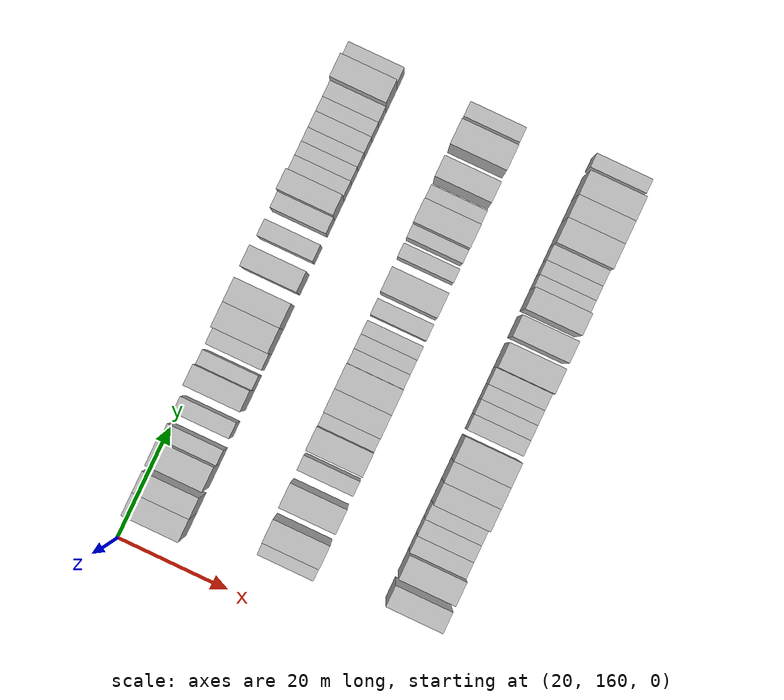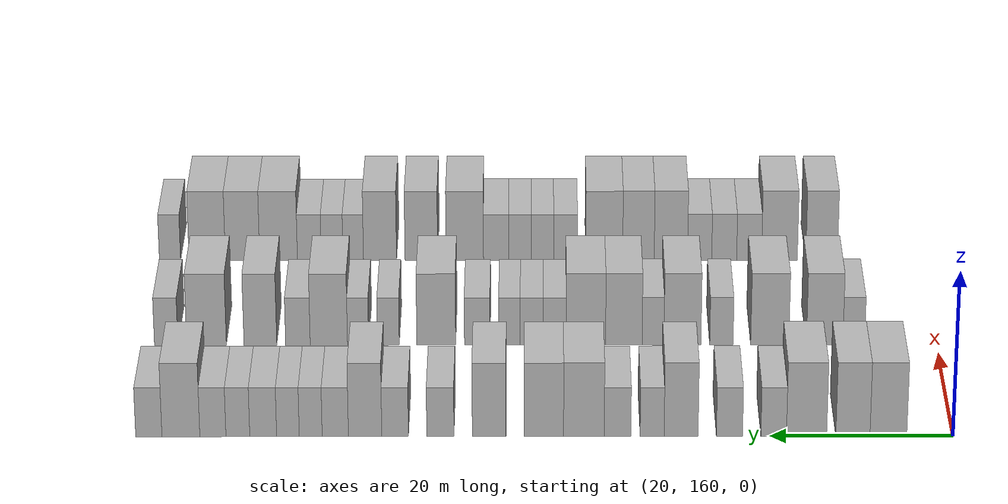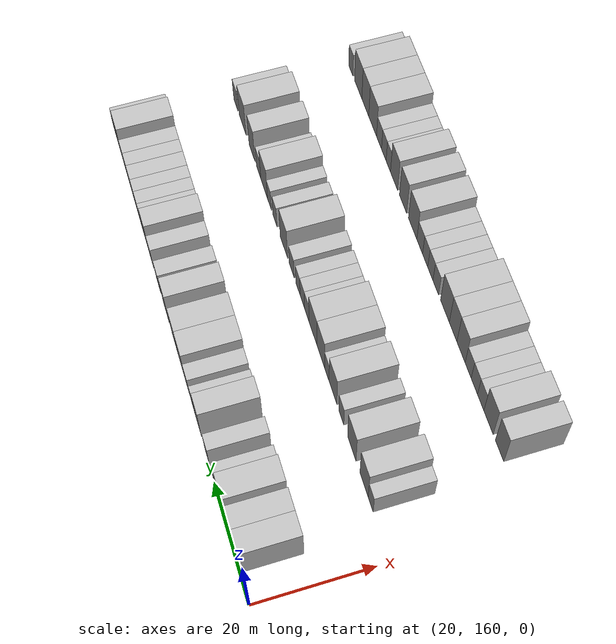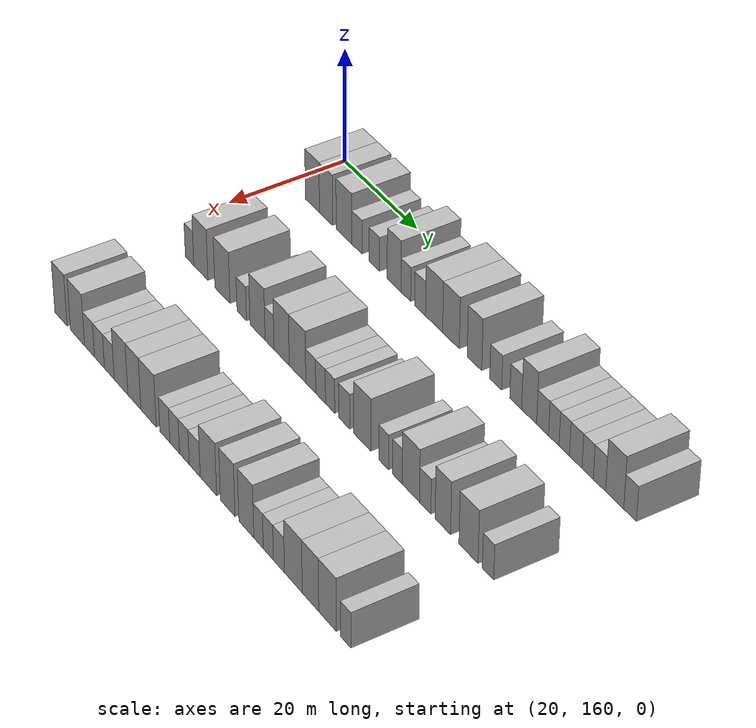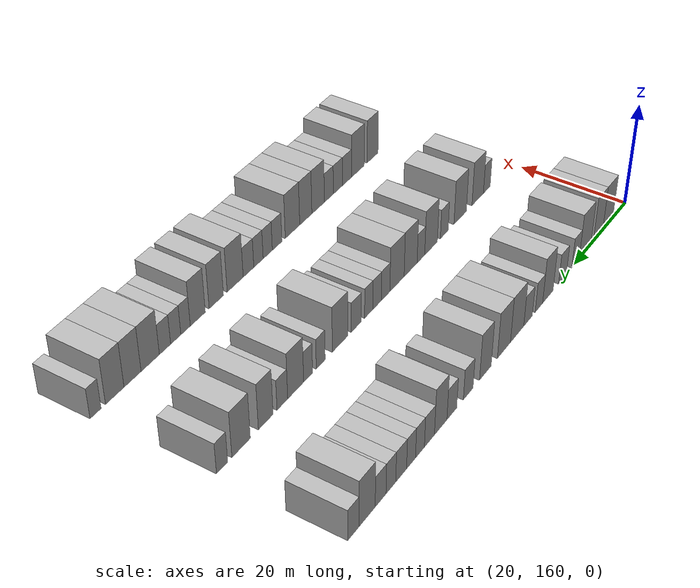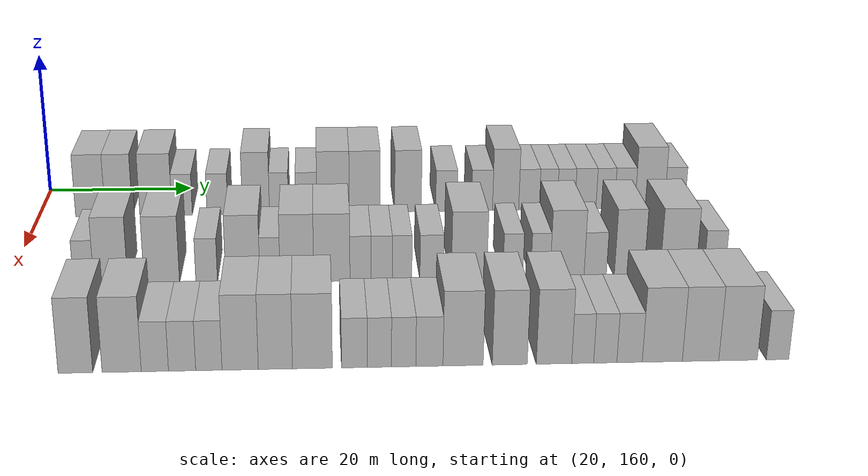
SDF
<sdf version="1.6">
 <world name="default">
  <model name="building_107">
   <static>1</static>
   <pose>25.0000 167.0758 0 0.000000 0.000000 0.000000</pose>
   <link name="link">
    <pose>0 0 4.50 0 0 0</pose>
    <collision name="collision"><geometry><box><size>10.0000 4.0191 9.0000</size></box></geometry></collision>
    <visual name="visual">
     <cast_shadows>0</cast_shadows>
     <geometry><box><size>10.0000 4.0191 9.0000</size></box></geometry>
     <material>
      <script>
       <uri>model://HANNAS_wall/materials/scripts</uri>
       <uri>model://HANNAS_wall/materials/textures</uri>
       <name>vrc/HANNAS_wall</name>
      </script>
     </material>
    </visual>
   </link>
  </model>
  <model name="building_108">
   <static>1</static>
   <pose>25.0000 170.9460 0 0.000000 0.000000 0.000000</pose>
   <link name="link">
    <pose>0 0 4.50 0 0 0</pose>
    <collision name="collision"><geometry><box><size>10.0000 3.7213 9.0000</size></box></geometry></collision>
    <visual name="visual">
     <cast_shadows>0</cast_shadows>
     <geometry><box><size>10.0000 3.7213 9.0000</size></box></geometry>
     <material>
      <script>
       <uri>model://HANNAS_wall/materials/scripts</uri>
       <uri>model://HANNAS_wall/materials/textures</uri>
       <name>vrc/HANNAS_wall</name>
      </script>
     </material>
    </visual>
   </link>
  </model>
  <model name="building_109">
   <static>1</static>
   <pose>25.0000 176.0025 0 0.000000 0.000000 0.000000</pose>
   <link name="link">
    <pose>0 0 4.50 0 0 0</pose>
    <collision name="collision"><geometry><box><size>10.0000 4.3917 9.0000</size></box></geometry></collision>
    <visual name="visual">
     <cast_shadows>0</cast_shadows>
     <geometry><box><size>10.0000 4.3917 9.0000</size></box></geometry>
     <material>
      <script>
       <uri>model://HANNAS_wall/materials/scripts</uri>
       <uri>model://HANNAS_wall/materials/textures</uri>
       <name>vrc/HANNAS_wall</name>
      </script>
     </material>
    </visual>
   </link>
  </model>
  <model name="building_110">
   <static>1</static>
   <pose>25.0000 179.5913 0 0.000000 0.000000 0.000000</pose>
   <link name="link">
    <pose>0 0 3.00 0 0 0</pose>
    <collision name="collision"><geometry><box><size>10.0000 2.7858 6.0000</size></box></geometry></collision>
    <visual name="visual">
     <cast_shadows>0</cast_shadows>
     <geometry><box><size>10.0000 2.7858 6.0000</size></box></geometry>
     <material>
      <script>
       <uri>model://HANNAS_wall/materials/scripts</uri>
       <uri>model://HANNAS_wall/materials/textures</uri>
       <name>vrc/HANNAS_wall</name>
      </script>
     </material>
    </visual>
   </link>
  </model>
  <model name="building_111">
   <static>1</static>
   <pose>25.0000 184.4100 0 0.000000 0.000000 0.000000</pose>
   <link name="link">
    <pose>0 0 3.00 0 0 0</pose>
    <collision name="collision"><geometry><box><size>10.0000 2.8516 6.0000</size></box></geometry></collision>
    <visual name="visual">
     <cast_shadows>0</cast_shadows>
     <geometry><box><size>10.0000 2.8516 6.0000</size></box></geometry>
     <material>
      <script>
       <uri>model://HANNAS_wall/materials/scripts</uri>
       <uri>model://HANNAS_wall/materials/textures</uri>
       <name>vrc/HANNAS_wall</name>
      </script>
     </material>
    </visual>
   </link>
  </model>
  <model name="building_112">
   <static>1</static>
   <pose>25.0000 189.6895 0 0.000000 0.000000 0.000000</pose>
   <link name="link">
    <pose>0 0 4.50 0 0 0</pose>
    <collision name="collision"><geometry><box><size>10.0000 3.7074 9.0000</size></box></geometry></collision>
    <visual name="visual">
     <cast_shadows>0</cast_shadows>
     <geometry><box><size>10.0000 3.7074 9.0000</size></box></geometry>
     <material>
      <script>
       <uri>model://HANNAS_wall/materials/scripts</uri>
       <uri>model://HANNAS_wall/materials/textures</uri>
       <name>vrc/HANNAS_wall</name>
      </script>
     </material>
    </visual>
   </link>
  </model>
  <model name="building_113">
   <static>1</static>
   <pose>25.0000 192.8503 0 0.000000 0.000000 0.000000</pose>
   <link name="link">
    <pose>0 0 3.00 0 0 0</pose>
    <collision name="collision"><geometry><box><size>10.0000 2.6142 6.0000</size></box></geometry></collision>
    <visual name="visual">
     <cast_shadows>0</cast_shadows>
     <geometry><box><size>10.0000 2.6142 6.0000</size></box></geometry>
     <material>
      <script>
       <uri>model://HANNAS_wall/materials/scripts</uri>
       <uri>model://HANNAS_wall/materials/textures</uri>
       <name>vrc/HANNAS_wall</name>
      </script>
     </material>
    </visual>
   </link>
  </model>
  <model name="building_114">
   <static>1</static>
   <pose>25.0000 196.6138 0 0.000000 0.000000 0.000000</pose>
   <link name="link">
    <pose>0 0 3.00 0 0 0</pose>
    <collision name="collision"><geometry><box><size>10.0000 2.9129 6.0000</size></box></geometry></collision>
    <visual name="visual">
     <cast_shadows>0</cast_shadows>
     <geometry><box><size>10.0000 2.9129 6.0000</size></box></geometry>
     <material>
      <script>
       <uri>model://HANNAS_wall/materials/scripts</uri>
       <uri>model://HANNAS_wall/materials/textures</uri>
       <name>vrc/HANNAS_wall</name>
      </script>
     </material>
    </visual>
   </link>
  </model>
  <model name="building_115">
   <static>1</static>
   <pose>25.0000 200.2896 0 0.000000 0.000000 0.000000</pose>
   <link name="link">
    <pose>0 0 4.50 0 0 0</pose>
    <collision name="collision"><geometry><box><size>10.0000 4.4387 9.0000</size></box></geometry></collision>
    <visual name="visual">
     <cast_shadows>0</cast_shadows>
     <geometry><box><size>10.0000 4.4387 9.0000</size></box></geometry>
     <material>
      <script>
       <uri>model://HANNAS_wall/materials/scripts</uri>
       <uri>model://HANNAS_wall/materials/textures</uri>
       <name>vrc/HANNAS_wall</name>
      </script>
     </material>
    </visual>
   </link>
  </model>
  <model name="building_116">
   <static>1</static>
   <pose>25.0000 204.6484 0 0.000000 0.000000 0.000000</pose>
   <link name="link">
    <pose>0 0 4.50 0 0 0</pose>
    <collision name="collision"><geometry><box><size>10.0000 4.2787 9.0000</size></box></geometry></collision>
    <visual name="visual">
     <cast_shadows>0</cast_shadows>
     <geometry><box><size>10.0000 4.2787 9.0000</size></box></geometry>
     <material>
      <script>
       <uri>model://HANNAS_wall/materials/scripts</uri>
       <uri>model://HANNAS_wall/materials/textures</uri>
       <name>vrc/HANNAS_wall</name>
      </script>
     </material>
    </visual>
   </link>
  </model>
  <model name="building_117">
   <static>1</static>
   <pose>25.0000 210.6261 0 0.000000 0.000000 0.000000</pose>
   <link name="link">
    <pose>0 0 4.50 0 0 0</pose>
    <collision name="collision"><geometry><box><size>10.0000 3.6767 9.0000</size></box></geometry></collision>
    <visual name="visual">
     <cast_shadows>0</cast_shadows>
     <geometry><box><size>10.0000 3.6767 9.0000</size></box></geometry>
     <material>
      <script>
       <uri>model://HANNAS_wall/materials/scripts</uri>
       <uri>model://HANNAS_wall/materials/textures</uri>
       <name>vrc/HANNAS_wall</name>
      </script>
     </material>
    </visual>
   </link>
  </model>
  <model name="building_118">
   <static>1</static>
   <pose>25.0000 215.9495 0 0.000000 0.000000 0.000000</pose>
   <link name="link">
    <pose>0 0 3.00 0 0 0</pose>
    <collision name="collision"><geometry><box><size>10.0000 2.9702 6.0000</size></box></geometry></collision>
    <visual name="visual">
     <cast_shadows>0</cast_shadows>
     <geometry><box><size>10.0000 2.9702 6.0000</size></box></geometry>
     <material>
      <script>
       <uri>model://HANNAS_wall/materials/scripts</uri>
       <uri>model://HANNAS_wall/materials/textures</uri>
       <name>vrc/HANNAS_wall</name>
      </script>
     </material>
    </visual>
   </link>
  </model>
  <model name="building_119">
   <static>1</static>
   <pose>25.0000 220.8878 0 0.000000 0.000000 0.000000</pose>
   <link name="link">
    <pose>0 0 3.00 0 0 0</pose>
    <collision name="collision"><geometry><box><size>10.0000 2.9063 6.0000</size></box></geometry></collision>
    <visual name="visual">
     <cast_shadows>0</cast_shadows>
     <geometry><box><size>10.0000 2.9063 6.0000</size></box></geometry>
     <material>
      <script>
       <uri>model://HANNAS_wall/materials/scripts</uri>
       <uri>model://HANNAS_wall/materials/textures</uri>
       <name>vrc/HANNAS_wall</name>
      </script>
     </material>
    </visual>
   </link>
  </model>
  <model name="building_120">
   <static>1</static>
   <pose>25.0000 224.1613 0 0.000000 0.000000 0.000000</pose>
   <link name="link">
    <pose>0 0 4.50 0 0 0</pose>
    <collision name="collision"><geometry><box><size>10.0000 3.6408 9.0000</size></box></geometry></collision>
    <visual name="visual">
     <cast_shadows>0</cast_shadows>
     <geometry><box><size>10.0000 3.6408 9.0000</size></box></geometry>
     <material>
      <script>
       <uri>model://HANNAS_wall/materials/scripts</uri>
       <uri>model://HANNAS_wall/materials/textures</uri>
       <name>vrc/HANNAS_wall</name>
      </script>
     </material>
    </visual>
   </link>
  </model>
  <model name="building_121">
   <static>1</static>
   <pose>25.0000 227.4123 0 0.000000 0.000000 0.000000</pose>
   <link name="link">
    <pose>0 0 3.00 0 0 0</pose>
    <collision name="collision"><geometry><box><size>10.0000 2.8612 6.0000</size></box></geometry></collision>
    <visual name="visual">
     <cast_shadows>0</cast_shadows>
     <geometry><box><size>10.0000 2.8612 6.0000</size></box></geometry>
     <material>
      <script>
       <uri>model://HANNAS_wall/materials/scripts</uri>
       <uri>model://HANNAS_wall/materials/textures</uri>
       <name>vrc/HANNAS_wall</name>
      </script>
     </material>
    </visual>
   </link>
  </model>
  <model name="building_122">
   <static>1</static>
   <pose>25.0000 230.0926 0 0.000000 0.000000 0.000000</pose>
   <link name="link">
    <pose>0 0 3.00 0 0 0</pose>
    <collision name="collision"><geometry><box><size>10.0000 2.4994 6.0000</size></box></geometry></collision>
    <visual name="visual">
     <cast_shadows>0</cast_shadows>
     <geometry><box><size>10.0000 2.4994 6.0000</size></box></geometry>
     <material>
      <script>
       <uri>model://HANNAS_wall/materials/scripts</uri>
       <uri>model://HANNAS_wall/materials/textures</uri>
       <name>vrc/HANNAS_wall</name>
      </script>
     </material>
    </visual>
   </link>
  </model>
  <model name="building_123">
   <static>1</static>
   <pose>25.0000 232.5767 0 0.000000 0.000000 0.000000</pose>
   <link name="link">
    <pose>0 0 3.00 0 0 0</pose>
    <collision name="collision"><geometry><box><size>10.0000 2.4689 6.0000</size></box></geometry></collision>
    <visual name="visual">
     <cast_shadows>0</cast_shadows>
     <geometry><box><size>10.0000 2.4689 6.0000</size></box></geometry>
     <material>
      <script>
       <uri>model://HANNAS_wall/materials/scripts</uri>
       <uri>model://HANNAS_wall/materials/textures</uri>
       <name>vrc/HANNAS_wall</name>
      </script>
     </material>
    </visual>
   </link>
  </model>
  <model name="building_124">
   <static>1</static>
   <pose>25.0000 235.2777 0 0.000000 0.000000 0.000000</pose>
   <link name="link">
    <pose>0 0 3.00 0 0 0</pose>
    <collision name="collision"><geometry><box><size>10.0000 2.9331 6.0000</size></box></geometry></collision>
    <visual name="visual">
     <cast_shadows>0</cast_shadows>
     <geometry><box><size>10.0000 2.9331 6.0000</size></box></geometry>
     <material>
      <script>
       <uri>model://HANNAS_wall/materials/scripts</uri>
       <uri>model://HANNAS_wall/materials/textures</uri>
       <name>vrc/HANNAS_wall</name>
      </script>
     </material>
    </visual>
   </link>
  </model>
  <model name="building_125">
   <static>1</static>
   <pose>25.0000 238.0441 0 0.000000 0.000000 0.000000</pose>
   <link name="link">
    <pose>0 0 3.00 0 0 0</pose>
    <collision name="collision"><geometry><box><size>10.0000 2.5997 6.0000</size></box></geometry></collision>
    <visual name="visual">
     <cast_shadows>0</cast_shadows>
     <geometry><box><size>10.0000 2.5997 6.0000</size></box></geometry>
     <material>
      <script>
       <uri>model://HANNAS_wall/materials/scripts</uri>
       <uri>model://HANNAS_wall/materials/textures</uri>
       <name>vrc/HANNAS_wall</name>
      </script>
     </material>
    </visual>
   </link>
  </model>
  <model name="building_126">
   <static>1</static>
   <pose>25.0000 240.7661 0 0.000000 0.000000 0.000000</pose>
   <link name="link">
    <pose>0 0 3.00 0 0 0</pose>
    <collision name="collision"><geometry><box><size>10.0000 2.8443 6.0000</size></box></geometry></collision>
    <visual name="visual">
     <cast_shadows>0</cast_shadows>
     <geometry><box><size>10.0000 2.8443 6.0000</size></box></geometry>
     <material>
      <script>
       <uri>model://HANNAS_wall/materials/scripts</uri>
       <uri>model://HANNAS_wall/materials/textures</uri>
       <name>vrc/HANNAS_wall</name>
      </script>
     </material>
    </visual>
   </link>
  </model>
  <model name="building_127">
   <static>1</static>
   <pose>25.0000 244.2542 0 0.000000 0.000000 0.000000</pose>
   <link name="link">
    <pose>0 0 4.50 0 0 0</pose>
    <collision name="collision"><geometry><box><size>10.0000 4.1318 9.0000</size></box></geometry></collision>
    <visual name="visual">
     <cast_shadows>0</cast_shadows>
     <geometry><box><size>10.0000 4.1318 9.0000</size></box></geometry>
     <material>
      <script>
       <uri>model://HANNAS_wall/materials/scripts</uri>
       <uri>model://HANNAS_wall/materials/textures</uri>
       <name>vrc/HANNAS_wall</name>
      </script>
     </material>
    </visual>
   </link>
  </model>
  <model name="building_128">
   <static>1</static>
   <pose>25.0000 247.7503 0 0.000000 0.000000 0.000000</pose>
   <link name="link">
    <pose>0 0 3.00 0 0 0</pose>
    <collision name="collision"><geometry><box><size>10.0000 2.8604 6.0000</size></box></geometry></collision>
    <visual name="visual">
     <cast_shadows>0</cast_shadows>
     <geometry><box><size>10.0000 2.8604 6.0000</size></box></geometry>
     <material>
      <script>
       <uri>model://HANNAS_wall/materials/scripts</uri>
       <uri>model://HANNAS_wall/materials/textures</uri>
       <name>vrc/HANNAS_wall</name>
      </script>
     </material>
    </visual>
   </link>
  </model>
  <model name="building_236">
   <static>1</static>
   <pose>47.0000 169.4350 0 0.000000 0.000000 0.000000</pose>
   <link name="link">
    <pose>0 0 3.00 0 0 0</pose>
    <collision name="collision"><geometry><box><size>10.0000 2.4750 6.0000</size></box></geometry></collision>
    <visual name="visual">
     <cast_shadows>0</cast_shadows>
     <geometry><box><size>10.0000 2.4750 6.0000</size></box></geometry>
     <material>
      <script>
       <uri>model://HANNAS_wall/materials/scripts</uri>
       <uri>model://HANNAS_wall/materials/textures</uri>
       <name>vrc/HANNAS_wall</name>
      </script>
     </material>
    </visual>
   </link>
  </model>
  <model name="building_237">
   <static>1</static>
   <pose>47.0000 172.7394 0 0.000000 0.000000 0.000000</pose>
   <link name="link">
    <pose>0 0 4.50 0 0 0</pose>
    <collision name="collision"><geometry><box><size>10.0000 4.1339 9.0000</size></box></geometry></collision>
    <visual name="visual">
     <cast_shadows>0</cast_shadows>
     <geometry><box><size>10.0000 4.1339 9.0000</size></box></geometry>
     <material>
      <script>
       <uri>model://HANNAS_wall/materials/scripts</uri>
       <uri>model://HANNAS_wall/materials/textures</uri>
       <name>vrc/HANNAS_wall</name>
      </script>
     </material>
    </visual>
   </link>
  </model>
  <model name="building_238">
   <static>1</static>
   <pose>47.0000 178.9710 0 0.000000 0.000000 0.000000</pose>
   <link name="link">
    <pose>0 0 4.50 0 0 0</pose>
    <collision name="collision"><geometry><box><size>10.0000 4.3293 9.0000</size></box></geometry></collision>
    <visual name="visual">
     <cast_shadows>0</cast_shadows>
     <geometry><box><size>10.0000 4.3293 9.0000</size></box></geometry>
     <material>
      <script>
       <uri>model://HANNAS_wall/materials/scripts</uri>
       <uri>model://HANNAS_wall/materials/textures</uri>
       <name>vrc/HANNAS_wall</name>
      </script>
     </material>
    </visual>
   </link>
  </model>
  <model name="building_239">
   <static>1</static>
   <pose>47.0000 184.4597 0 0.000000 0.000000 0.000000</pose>
   <link name="link">
    <pose>0 0 3.00 0 0 0</pose>
    <collision name="collision"><geometry><box><size>10.0000 2.6481 6.0000</size></box></geometry></collision>
    <visual name="visual">
     <cast_shadows>0</cast_shadows>
     <geometry><box><size>10.0000 2.6481 6.0000</size></box></geometry>
     <material>
      <script>
       <uri>model://HANNAS_wall/materials/scripts</uri>
       <uri>model://HANNAS_wall/materials/textures</uri>
       <name>vrc/HANNAS_wall</name>
      </script>
     </material>
    </visual>
   </link>
  </model>
  <model name="building_240">
   <static>1</static>
   <pose>47.0000 188.8817 0 0.000000 0.000000 0.000000</pose>
   <link name="link">
    <pose>0 0 4.50 0 0 0</pose>
    <collision name="collision"><geometry><box><size>10.0000 4.1958 9.0000</size></box></geometry></collision>
    <visual name="visual">
     <cast_shadows>0</cast_shadows>
     <geometry><box><size>10.0000 4.1958 9.0000</size></box></geometry>
     <material>
      <script>
       <uri>model://HANNAS_wall/materials/scripts</uri>
       <uri>model://HANNAS_wall/materials/textures</uri>
       <name>vrc/HANNAS_wall</name>
      </script>
     </material>
    </visual>
   </link>
  </model>
  <model name="building_241">
   <static>1</static>
   <pose>47.0000 192.2202 0 0.000000 0.000000 0.000000</pose>
   <link name="link">
    <pose>0 0 3.00 0 0 0</pose>
    <collision name="collision"><geometry><box><size>10.0000 2.4813 6.0000</size></box></geometry></collision>
    <visual name="visual">
     <cast_shadows>0</cast_shadows>
     <geometry><box><size>10.0000 2.4813 6.0000</size></box></geometry>
     <material>
      <script>
       <uri>model://HANNAS_wall/materials/scripts</uri>
       <uri>model://HANNAS_wall/materials/textures</uri>
       <name>vrc/HANNAS_wall</name>
      </script>
     </material>
    </visual>
   </link>
  </model>
  <model name="building_242">
   <static>1</static>
   <pose>47.0000 195.5346 0 0.000000 0.000000 0.000000</pose>
   <link name="link">
    <pose>0 0 4.50 0 0 0</pose>
    <collision name="collision"><geometry><box><size>10.0000 4.1475 9.0000</size></box></geometry></collision>
    <visual name="visual">
     <cast_shadows>0</cast_shadows>
     <geometry><box><size>10.0000 4.1475 9.0000</size></box></geometry>
     <material>
      <script>
       <uri>model://HANNAS_wall/materials/scripts</uri>
       <uri>model://HANNAS_wall/materials/textures</uri>
       <name>vrc/HANNAS_wall</name>
      </script>
     </material>
    </visual>
   </link>
  </model>
  <model name="building_243">
   <static>1</static>
   <pose>47.0000 199.8402 0 0.000000 0.000000 0.000000</pose>
   <link name="link">
    <pose>0 0 4.50 0 0 0</pose>
    <collision name="collision"><geometry><box><size>10.0000 4.4636 9.0000</size></box></geometry></collision>
    <visual name="visual">
     <cast_shadows>0</cast_shadows>
     <geometry><box><size>10.0000 4.4636 9.0000</size></box></geometry>
     <material>
      <script>
       <uri>model://HANNAS_wall/materials/scripts</uri>
       <uri>model://HANNAS_wall/materials/textures</uri>
       <name>vrc/HANNAS_wall</name>
      </script>
     </material>
    </visual>
   </link>
  </model>
  <model name="building_244">
   <static>1</static>
   <pose>47.0000 203.3825 0 0.000000 0.000000 0.000000</pose>
   <link name="link">
    <pose>0 0 3.00 0 0 0</pose>
    <collision name="collision"><geometry><box><size>10.0000 2.6209 6.0000</size></box></geometry></collision>
    <visual name="visual">
     <cast_shadows>0</cast_shadows>
     <geometry><box><size>10.0000 2.6209 6.0000</size></box></geometry>
     <material>
      <script>
       <uri>model://HANNAS_wall/materials/scripts</uri>
       <uri>model://HANNAS_wall/materials/textures</uri>
       <name>vrc/HANNAS_wall</name>
      </script>
     </material>
    </visual>
   </link>
  </model>
  <model name="building_245">
   <static>1</static>
   <pose>47.0000 205.9916 0 0.000000 0.000000 0.000000</pose>
   <link name="link">
    <pose>0 0 3.00 0 0 0</pose>
    <collision name="collision"><geometry><box><size>10.0000 2.5974 6.0000</size></box></geometry></collision>
    <visual name="visual">
     <cast_shadows>0</cast_shadows>
     <geometry><box><size>10.0000 2.5974 6.0000</size></box></geometry>
     <material>
      <script>
       <uri>model://HANNAS_wall/materials/scripts</uri>
       <uri>model://HANNAS_wall/materials/textures</uri>
       <name>vrc/HANNAS_wall</name>
      </script>
     </material>
    </visual>
   </link>
  </model>
  <model name="building_246">
   <static>1</static>
   <pose>47.0000 208.5048 0 0.000000 0.000000 0.000000</pose>
   <link name="link">
    <pose>0 0 3.00 0 0 0</pose>
    <collision name="collision"><geometry><box><size>10.0000 2.4290 6.0000</size></box></geometry></collision>
    <visual name="visual">
     <cast_shadows>0</cast_shadows>
     <geometry><box><size>10.0000 2.4290 6.0000</size></box></geometry>
     <material>
      <script>
       <uri>model://HANNAS_wall/materials/scripts</uri>
       <uri>model://HANNAS_wall/materials/textures</uri>
       <name>vrc/HANNAS_wall</name>
      </script>
     </material>
    </visual>
   </link>
  </model>
  <model name="building_247">
   <static>1</static>
   <pose>47.0000 212.1696 0 0.000000 0.000000 0.000000</pose>
   <link name="link">
    <pose>0 0 3.00 0 0 0</pose>
    <collision name="collision"><geometry><box><size>10.0000 2.9007 6.0000</size></box></geometry></collision>
    <visual name="visual">
     <cast_shadows>0</cast_shadows>
     <geometry><box><size>10.0000 2.9007 6.0000</size></box></geometry>
     <material>
      <script>
       <uri>model://HANNAS_wall/materials/scripts</uri>
       <uri>model://HANNAS_wall/materials/textures</uri>
       <name>vrc/HANNAS_wall</name>
      </script>
     </material>
    </visual>
   </link>
  </model>
  <model name="building_248">
   <static>1</static>
   <pose>47.0000 216.8234 0 0.000000 0.000000 0.000000</pose>
   <link name="link">
    <pose>0 0 4.50 0 0 0</pose>
    <collision name="collision"><geometry><box><size>10.0000 4.4070 9.0000</size></box></geometry></collision>
    <visual name="visual">
     <cast_shadows>0</cast_shadows>
     <geometry><box><size>10.0000 4.4070 9.0000</size></box></geometry>
     <material>
      <script>
       <uri>model://HANNAS_wall/materials/scripts</uri>
       <uri>model://HANNAS_wall/materials/textures</uri>
       <name>vrc/HANNAS_wall</name>
      </script>
     </material>
    </visual>
   </link>
  </model>
  <model name="building_249">
   <static>1</static>
   <pose>47.0000 222.2622 0 0.000000 0.000000 0.000000</pose>
   <link name="link">
    <pose>0 0 3.00 0 0 0</pose>
    <collision name="collision"><geometry><box><size>10.0000 2.4705 6.0000</size></box></geometry></collision>
    <visual name="visual">
     <cast_shadows>0</cast_shadows>
     <geometry><box><size>10.0000 2.4705 6.0000</size></box></geometry>
     <material>
      <script>
       <uri>model://HANNAS_wall/materials/scripts</uri>
       <uri>model://HANNAS_wall/materials/textures</uri>
       <name>vrc/HANNAS_wall</name>
      </script>
     </material>
    </visual>
   </link>
  </model>
  <model name="building_250">
   <static>1</static>
   <pose>47.0000 225.6991 0 0.000000 0.000000 0.000000</pose>
   <link name="link">
    <pose>0 0 3.00 0 0 0</pose>
    <collision name="collision"><geometry><box><size>10.0000 2.4032 6.0000</size></box></geometry></collision>
    <visual name="visual">
     <cast_shadows>0</cast_shadows>
     <geometry><box><size>10.0000 2.4032 6.0000</size></box></geometry>
     <material>
      <script>
       <uri>model://HANNAS_wall/materials/scripts</uri>
       <uri>model://HANNAS_wall/materials/textures</uri>
       <name>vrc/HANNAS_wall</name>
      </script>
     </material>
    </visual>
   </link>
  </model>
  <model name="building_251">
   <static>1</static>
   <pose>47.0000 229.0182 0 0.000000 0.000000 0.000000</pose>
   <link name="link">
    <pose>0 0 4.50 0 0 0</pose>
    <collision name="collision"><geometry><box><size>10.0000 4.2350 9.0000</size></box></geometry></collision>
    <visual name="visual">
     <cast_shadows>0</cast_shadows>
     <geometry><box><size>10.0000 4.2350 9.0000</size></box></geometry>
     <material>
      <script>
       <uri>model://HANNAS_wall/materials/scripts</uri>
       <uri>model://HANNAS_wall/materials/textures</uri>
       <name>vrc/HANNAS_wall</name>
      </script>
     </material>
    </visual>
   </link>
  </model>
  <model name="building_252">
   <static>1</static>
   <pose>47.0000 232.5299 0 0.000000 0.000000 0.000000</pose>
   <link name="link">
    <pose>0 0 3.00 0 0 0</pose>
    <collision name="collision"><geometry><box><size>10.0000 2.7884 6.0000</size></box></geometry></collision>
    <visual name="visual">
     <cast_shadows>0</cast_shadows>
     <geometry><box><size>10.0000 2.7884 6.0000</size></box></geometry>
     <material>
      <script>
       <uri>model://HANNAS_wall/materials/scripts</uri>
       <uri>model://HANNAS_wall/materials/textures</uri>
       <name>vrc/HANNAS_wall</name>
      </script>
     </material>
    </visual>
   </link>
  </model>
  <model name="building_253">
   <static>1</static>
   <pose>47.0000 236.7851 0 0.000000 0.000000 0.000000</pose>
   <link name="link">
    <pose>0 0 4.50 0 0 0</pose>
    <collision name="collision"><geometry><box><size>10.0000 3.7220 9.0000</size></box></geometry></collision>
    <visual name="visual">
     <cast_shadows>0</cast_shadows>
     <geometry><box><size>10.0000 3.7220 9.0000</size></box></geometry>
     <material>
      <script>
       <uri>model://HANNAS_wall/materials/scripts</uri>
       <uri>model://HANNAS_wall/materials/textures</uri>
       <name>vrc/HANNAS_wall</name>
      </script>
     </material>
    </visual>
   </link>
  </model>
  <model name="building_254">
   <static>1</static>
   <pose>47.0000 242.8953 0 0.000000 0.000000 0.000000</pose>
   <link name="link">
    <pose>0 0 4.50 0 0 0</pose>
    <collision name="collision"><geometry><box><size>10.0000 4.4982 9.0000</size></box></geometry></collision>
    <visual name="visual">
     <cast_shadows>0</cast_shadows>
     <geometry><box><size>10.0000 4.4982 9.0000</size></box></geometry>
     <material>
      <script>
       <uri>model://HANNAS_wall/materials/scripts</uri>
       <uri>model://HANNAS_wall/materials/textures</uri>
       <name>vrc/HANNAS_wall</name>
      </script>
     </material>
    </visual>
   </link>
  </model>
  <model name="building_255">
   <static>1</static>
   <pose>47.0000 247.4753 0 0.000000 0.000000 0.000000</pose>
   <link name="link">
    <pose>0 0 3.00 0 0 0</pose>
    <collision name="collision"><geometry><box><size>10.0000 2.6618 6.0000</size></box></geometry></collision>
    <visual name="visual">
     <cast_shadows>0</cast_shadows>
     <geometry><box><size>10.0000 2.6618 6.0000</size></box></geometry>
     <material>
      <script>
       <uri>model://HANNAS_wall/materials/scripts</uri>
       <uri>model://HANNAS_wall/materials/textures</uri>
       <name>vrc/HANNAS_wall</name>
      </script>
     </material>
    </visual>
   </link>
  </model>
  <model name="building_367">
   <static>1</static>
   <pose>69.0000 171.8105 0 0.000000 0.000000 0.000000</pose>
   <link name="link">
    <pose>0 0 4.50 0 0 0</pose>
    <collision name="collision"><geometry><box><size>10.0000 3.7274 9.0000</size></box></geometry></collision>
    <visual name="visual">
     <cast_shadows>0</cast_shadows>
     <geometry><box><size>10.0000 3.7274 9.0000</size></box></geometry>
     <material>
      <script>
       <uri>model://HANNAS_wall/materials/scripts</uri>
       <uri>model://HANNAS_wall/materials/textures</uri>
       <name>vrc/HANNAS_wall</name>
      </script>
     </material>
    </visual>
   </link>
  </model>
  <model name="building_368">
   <static>1</static>
   <pose>69.0000 176.7849 0 0.000000 0.000000 0.000000</pose>
   <link name="link">
    <pose>0 0 4.50 0 0 0</pose>
    <collision name="collision"><geometry><box><size>10.0000 4.2215 9.0000</size></box></geometry></collision>
    <visual name="visual">
     <cast_shadows>0</cast_shadows>
     <geometry><box><size>10.0000 4.2215 9.0000</size></box></geometry>
     <material>
      <script>
       <uri>model://HANNAS_wall/materials/scripts</uri>
       <uri>model://HANNAS_wall/materials/textures</uri>
       <name>vrc/HANNAS_wall</name>
      </script>
     </material>
    </visual>
   </link>
  </model>
  <model name="building_369">
   <static>1</static>
   <pose>69.0000 180.3639 0 0.000000 0.000000 0.000000</pose>
   <link name="link">
    <pose>0 0 3.00 0 0 0</pose>
    <collision name="collision"><geometry><box><size>10.0000 2.9365 6.0000</size></box></geometry></collision>
    <visual name="visual">
     <cast_shadows>0</cast_shadows>
     <geometry><box><size>10.0000 2.9365 6.0000</size></box></geometry>
     <material>
      <script>
       <uri>model://HANNAS_wall/materials/scripts</uri>
       <uri>model://HANNAS_wall/materials/textures</uri>
       <name>vrc/HANNAS_wall</name>
      </script>
     </material>
    </visual>
   </link>
  </model>
  <model name="building_370">
   <static>1</static>
   <pose>69.0000 183.3033 0 0.000000 0.000000 0.000000</pose>
   <link name="link">
    <pose>0 0 3.00 0 0 0</pose>
    <collision name="collision"><geometry><box><size>10.0000 2.9425 6.0000</size></box></geometry></collision>
    <visual name="visual">
     <cast_shadows>0</cast_shadows>
     <geometry><box><size>10.0000 2.9425 6.0000</size></box></geometry>
     <material>
      <script>
       <uri>model://HANNAS_wall/materials/scripts</uri>
       <uri>model://HANNAS_wall/materials/textures</uri>
       <name>vrc/HANNAS_wall</name>
      </script>
     </material>
    </visual>
   </link>
  </model>
  <model name="building_371">
   <static>1</static>
   <pose>69.0000 186.1982 0 0.000000 0.000000 0.000000</pose>
   <link name="link">
    <pose>0 0 3.00 0 0 0</pose>
    <collision name="collision"><geometry><box><size>10.0000 2.8473 6.0000</size></box></geometry></collision>
    <visual name="visual">
     <cast_shadows>0</cast_shadows>
     <geometry><box><size>10.0000 2.8473 6.0000</size></box></geometry>
     <material>
      <script>
       <uri>model://HANNAS_wall/materials/scripts</uri>
       <uri>model://HANNAS_wall/materials/textures</uri>
       <name>vrc/HANNAS_wall</name>
      </script>
     </material>
    </visual>
   </link>
  </model>
  <model name="building_372">
   <static>1</static>
   <pose>69.0000 189.5875 0 0.000000 0.000000 0.000000</pose>
   <link name="link">
    <pose>0 0 4.50 0 0 0</pose>
    <collision name="collision"><geometry><box><size>10.0000 3.9312 9.0000</size></box></geometry></collision>
    <visual name="visual">
     <cast_shadows>0</cast_shadows>
     <geometry><box><size>10.0000 3.9312 9.0000</size></box></geometry>
     <material>
      <script>
       <uri>model://HANNAS_wall/materials/scripts</uri>
       <uri>model://HANNAS_wall/materials/textures</uri>
       <name>vrc/HANNAS_wall</name>
      </script>
     </material>
    </visual>
   </link>
  </model>
  <model name="building_373">
   <static>1</static>
   <pose>69.0000 193.4112 0 0.000000 0.000000 0.000000</pose>
   <link name="link">
    <pose>0 0 4.50 0 0 0</pose>
    <collision name="collision"><geometry><box><size>10.0000 3.7161 9.0000</size></box></geometry></collision>
    <visual name="visual">
     <cast_shadows>0</cast_shadows>
     <geometry><box><size>10.0000 3.7161 9.0000</size></box></geometry>
     <material>
      <script>
       <uri>model://HANNAS_wall/materials/scripts</uri>
       <uri>model://HANNAS_wall/materials/textures</uri>
       <name>vrc/HANNAS_wall</name>
      </script>
     </material>
    </visual>
   </link>
  </model>
  <model name="building_374">
   <static>1</static>
   <pose>69.0000 197.4380 0 0.000000 0.000000 0.000000</pose>
   <link name="link">
    <pose>0 0 4.50 0 0 0</pose>
    <collision name="collision"><geometry><box><size>10.0000 4.3375 9.0000</size></box></geometry></collision>
    <visual name="visual">
     <cast_shadows>0</cast_shadows>
     <geometry><box><size>10.0000 4.3375 9.0000</size></box></geometry>
     <material>
      <script>
       <uri>model://HANNAS_wall/materials/scripts</uri>
       <uri>model://HANNAS_wall/materials/textures</uri>
       <name>vrc/HANNAS_wall</name>
      </script>
     </material>
    </visual>
   </link>
  </model>
  <model name="building_375">
   <static>1</static>
   <pose>69.0000 202.0072 0 0.000000 0.000000 0.000000</pose>
   <link name="link">
    <pose>0 0 3.00 0 0 0</pose>
    <collision name="collision"><geometry><box><size>10.0000 2.8008 6.0000</size></box></geometry></collision>
    <visual name="visual">
     <cast_shadows>0</cast_shadows>
     <geometry><box><size>10.0000 2.8008 6.0000</size></box></geometry>
     <material>
      <script>
       <uri>model://HANNAS_wall/materials/scripts</uri>
       <uri>model://HANNAS_wall/materials/textures</uri>
       <name>vrc/HANNAS_wall</name>
      </script>
     </material>
    </visual>
   </link>
  </model>
  <model name="building_376">
   <static>1</static>
   <pose>69.0000 204.7292 0 0.000000 0.000000 0.000000</pose>
   <link name="link">
    <pose>0 0 3.00 0 0 0</pose>
    <collision name="collision"><geometry><box><size>10.0000 2.6432 6.0000</size></box></geometry></collision>
    <visual name="visual">
     <cast_shadows>0</cast_shadows>
     <geometry><box><size>10.0000 2.6432 6.0000</size></box></geometry>
     <material>
      <script>
       <uri>model://HANNAS_wall/materials/scripts</uri>
       <uri>model://HANNAS_wall/materials/textures</uri>
       <name>vrc/HANNAS_wall</name>
      </script>
     </material>
    </visual>
   </link>
  </model>
  <model name="building_377">
   <static>1</static>
   <pose>69.0000 207.3819 0 0.000000 0.000000 0.000000</pose>
   <link name="link">
    <pose>0 0 3.00 0 0 0</pose>
    <collision name="collision"><geometry><box><size>10.0000 2.6621 6.0000</size></box></geometry></collision>
    <visual name="visual">
     <cast_shadows>0</cast_shadows>
     <geometry><box><size>10.0000 2.6621 6.0000</size></box></geometry>
     <material>
      <script>
       <uri>model://HANNAS_wall/materials/scripts</uri>
       <uri>model://HANNAS_wall/materials/textures</uri>
       <name>vrc/HANNAS_wall</name>
      </script>
     </material>
    </visual>
   </link>
  </model>
  <model name="building_378">
   <static>1</static>
   <pose>69.0000 210.1994 0 0.000000 0.000000 0.000000</pose>
   <link name="link">
    <pose>0 0 3.00 0 0 0</pose>
    <collision name="collision"><geometry><box><size>10.0000 2.9728 6.0000</size></box></geometry></collision>
    <visual name="visual">
     <cast_shadows>0</cast_shadows>
     <geometry><box><size>10.0000 2.9728 6.0000</size></box></geometry>
     <material>
      <script>
       <uri>model://HANNAS_wall/materials/scripts</uri>
       <uri>model://HANNAS_wall/materials/textures</uri>
       <name>vrc/HANNAS_wall</name>
      </script>
     </material>
    </visual>
   </link>
  </model>
  <model name="building_379">
   <static>1</static>
   <pose>69.0000 213.8882 0 0.000000 0.000000 0.000000</pose>
   <link name="link">
    <pose>0 0 4.50 0 0 0</pose>
    <collision name="collision"><geometry><box><size>10.0000 4.4049 9.0000</size></box></geometry></collision>
    <visual name="visual">
     <cast_shadows>0</cast_shadows>
     <geometry><box><size>10.0000 4.4049 9.0000</size></box></geometry>
     <material>
      <script>
       <uri>model://HANNAS_wall/materials/scripts</uri>
       <uri>model://HANNAS_wall/materials/textures</uri>
       <name>vrc/HANNAS_wall</name>
      </script>
     </material>
    </visual>
   </link>
  </model>
  <model name="building_380">
   <static>1</static>
   <pose>69.0000 219.0121 0 0.000000 0.000000 0.000000</pose>
   <link name="link">
    <pose>0 0 4.50 0 0 0</pose>
    <collision name="collision"><geometry><box><size>10.0000 3.8429 9.0000</size></box></geometry></collision>
    <visual name="visual">
     <cast_shadows>0</cast_shadows>
     <geometry><box><size>10.0000 3.8429 9.0000</size></box></geometry>
     <material>
      <script>
       <uri>model://HANNAS_wall/materials/scripts</uri>
       <uri>model://HANNAS_wall/materials/textures</uri>
       <name>vrc/HANNAS_wall</name>
      </script>
     </material>
    </visual>
   </link>
  </model>
  <model name="building_381">
   <static>1</static>
   <pose>69.0000 223.8843 0 0.000000 0.000000 0.000000</pose>
   <link name="link">
    <pose>0 0 4.50 0 0 0</pose>
    <collision name="collision"><geometry><box><size>10.0000 3.9014 9.0000</size></box></geometry></collision>
    <visual name="visual">
     <cast_shadows>0</cast_shadows>
     <geometry><box><size>10.0000 3.9014 9.0000</size></box></geometry>
     <material>
      <script>
       <uri>model://HANNAS_wall/materials/scripts</uri>
       <uri>model://HANNAS_wall/materials/textures</uri>
       <name>vrc/HANNAS_wall</name>
      </script>
     </material>
    </visual>
   </link>
  </model>
  <model name="building_382">
   <static>1</static>
   <pose>69.0000 227.0448 0 0.000000 0.000000 0.000000</pose>
   <link name="link">
    <pose>0 0 3.00 0 0 0</pose>
    <collision name="collision"><geometry><box><size>10.0000 2.4195 6.0000</size></box></geometry></collision>
    <visual name="visual">
     <cast_shadows>0</cast_shadows>
     <geometry><box><size>10.0000 2.4195 6.0000</size></box></geometry>
     <material>
      <script>
       <uri>model://HANNAS_wall/materials/scripts</uri>
       <uri>model://HANNAS_wall/materials/textures</uri>
       <name>vrc/HANNAS_wall</name>
      </script>
     </material>
    </visual>
   </link>
  </model>
  <model name="building_383">
   <static>1</static>
   <pose>69.0000 229.5371 0 0.000000 0.000000 0.000000</pose>
   <link name="link">
    <pose>0 0 3.00 0 0 0</pose>
    <collision name="collision"><geometry><box><size>10.0000 2.5651 6.0000</size></box></geometry></collision>
    <visual name="visual">
     <cast_shadows>0</cast_shadows>
     <geometry><box><size>10.0000 2.5651 6.0000</size></box></geometry>
     <material>
      <script>
       <uri>model://HANNAS_wall/materials/scripts</uri>
       <uri>model://HANNAS_wall/materials/textures</uri>
       <name>vrc/HANNAS_wall</name>
      </script>
     </material>
    </visual>
   </link>
  </model>
  <model name="building_384">
   <static>1</static>
   <pose>69.0000 232.2224 0 0.000000 0.000000 0.000000</pose>
   <link name="link">
    <pose>0 0 3.00 0 0 0</pose>
    <collision name="collision"><geometry><box><size>10.0000 2.8057 6.0000</size></box></geometry></collision>
    <visual name="visual">
     <cast_shadows>0</cast_shadows>
     <geometry><box><size>10.0000 2.8057 6.0000</size></box></geometry>
     <material>
      <script>
       <uri>model://HANNAS_wall/materials/scripts</uri>
       <uri>model://HANNAS_wall/materials/textures</uri>
       <name>vrc/HANNAS_wall</name>
      </script>
     </material>
    </visual>
   </link>
  </model>
  <model name="building_385">
   <static>1</static>
   <pose>69.0000 235.8475 0 0.000000 0.000000 0.000000</pose>
   <link name="link">
    <pose>0 0 4.50 0 0 0</pose>
    <collision name="collision"><geometry><box><size>10.0000 4.4445 9.0000</size></box></geometry></collision>
    <visual name="visual">
     <cast_shadows>0</cast_shadows>
     <geometry><box><size>10.0000 4.4445 9.0000</size></box></geometry>
     <material>
      <script>
       <uri>model://HANNAS_wall/materials/scripts</uri>
       <uri>model://HANNAS_wall/materials/textures</uri>
       <name>vrc/HANNAS_wall</name>
      </script>
     </material>
    </visual>
   </link>
  </model>
  <model name="building_386">
   <static>1</static>
   <pose>69.0000 240.0927 0 0.000000 0.000000 0.000000</pose>
   <link name="link">
    <pose>0 0 4.50 0 0 0</pose>
    <collision name="collision"><geometry><box><size>10.0000 4.0459 9.0000</size></box></geometry></collision>
    <visual name="visual">
     <cast_shadows>0</cast_shadows>
     <geometry><box><size>10.0000 4.0459 9.0000</size></box></geometry>
     <material>
      <script>
       <uri>model://HANNAS_wall/materials/scripts</uri>
       <uri>model://HANNAS_wall/materials/textures</uri>
       <name>vrc/HANNAS_wall</name>
      </script>
     </material>
    </visual>
   </link>
  </model>
  <model name="building_387">
   <static>1</static>
   <pose>69.0000 244.2583 0 0.000000 0.000000 0.000000</pose>
   <link name="link">
    <pose>0 0 4.50 0 0 0</pose>
    <collision name="collision"><geometry><box><size>10.0000 4.2853 9.0000</size></box></geometry></collision>
    <visual name="visual">
     <cast_shadows>0</cast_shadows>
     <geometry><box><size>10.0000 4.2853 9.0000</size></box></geometry>
     <material>
      <script>
       <uri>model://HANNAS_wall/materials/scripts</uri>
       <uri>model://HANNAS_wall/materials/textures</uri>
       <name>vrc/HANNAS_wall</name>
      </script>
     </material>
    </visual>
   </link>
  </model>
  <model name="building_388">
   <static>1</static>
   <pose>69.0000 248.6507 0 0.000000 0.000000 0.000000</pose>
   <link name="link">
    <pose>0 0 3.00 0 0 0</pose>
    <collision name="collision"><geometry><box><size>10.0000 2.4996 6.0000</size></box></geometry></collision>
    <visual name="visual">
     <cast_shadows>0</cast_shadows>
     <geometry><box><size>10.0000 2.4996 6.0000</size></box></geometry>
     <material>
      <script>
       <uri>model://HANNAS_wall/materials/scripts</uri>
       <uri>model://HANNAS_wall/materials/textures</uri>
       <name>vrc/HANNAS_wall</name>
      </script>
     </material>
    </visual>
   </link>
  </model>
 </world>
</sdf>
